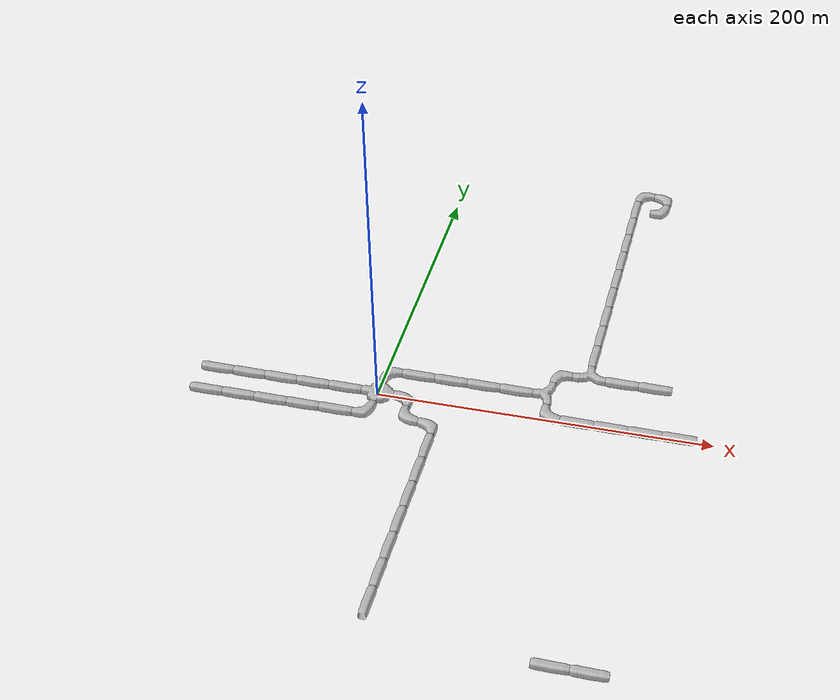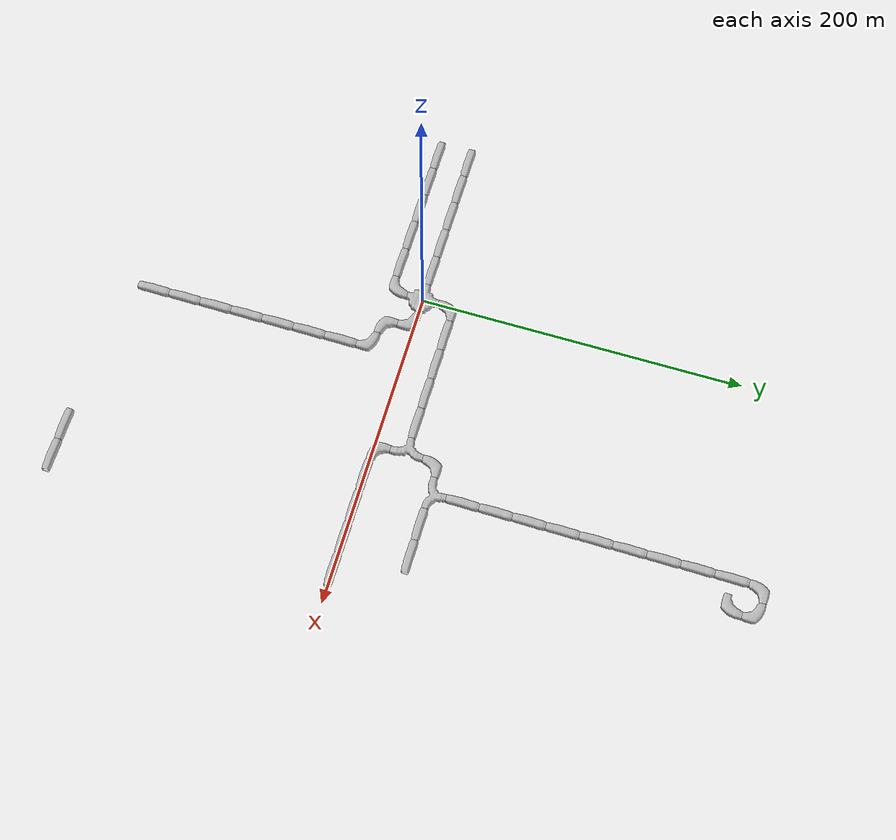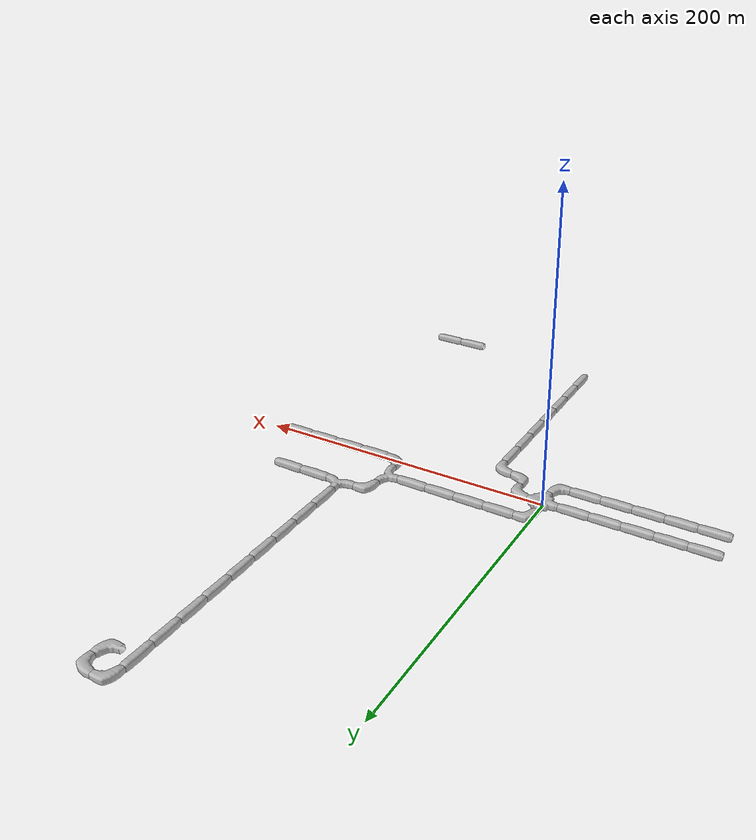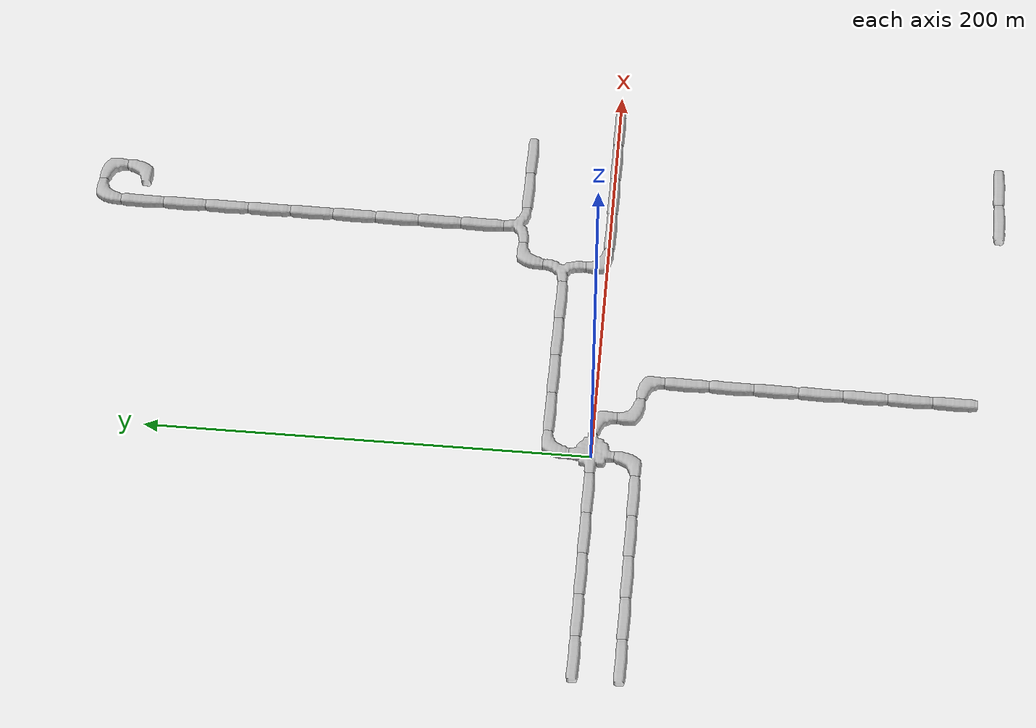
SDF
<sdf version="1.6">
 <world name="cave_8000_4">
  <include>
   <static>true</static>
   <name>cave_0_0</name>
   <pose>0 0 0 0 0 -1.5707963267948966</pose>
   <uri>model://cave_4way_20m</uri>
  </include>
  <include>
   <static>true</static>
   <name>cave_1_0</name>
   <pose>20 0 0 0 0 3.141592653589793</pose>
   <uri>model://cave_L_20m</uri>
  </include>
  <include>
   <static>true</static>
   <name>cave_1_-1</name>
   <pose>20 -20 0 0 0 0.0</pose>
   <uri>model://cave_L_20m</uri>
  </include>
  <include>
   <static>true</static>
   <name>cave_2_-1</name>
   <pose>40 -20 0 0 0 3.141592653589793</pose>
   <uri>model://cave_L_20m</uri>
  </include>
  <include>
   <static>true</static>
   <name>cave_2_-2</name>
   <pose>40 -40 0 0 0 0.0</pose>
   <uri>model://cave_straight_20m</uri>
  </include>
  <include>
   <static>true</static>
   <name>cave_2_-3</name>
   <pose>40 -60 0 0 0 0.0</pose>
   <uri>model://cave_straight_20m</uri>
  </include>
  <include>
   <static>true</static>
   <name>cave_2_-4</name>
   <pose>40 -80 0 0 0 0.0</pose>
   <uri>model://cave_straight_20m</uri>
  </include>
  <include>
   <static>true</static>
   <name>cave_2_-5</name>
   <pose>40 -100 0 0 0 0.0</pose>
   <uri>model://cave_straight_20m</uri>
  </include>
  <include>
   <static>true</static>
   <name>cave_2_-6</name>
   <pose>40 -120 0 0 0 0.0</pose>
   <uri>model://cave_straight_20m</uri>
  </include>
  <include>
   <static>true</static>
   <name>cave_2_-7</name>
   <pose>40 -140 0 0 0 0.0</pose>
   <uri>model://cave_straight_20m</uri>
  </include>
  <include>
   <static>true</static>
   <name>cave_2_-8</name>
   <pose>40 -160 0 0 0 0.0</pose>
   <uri>model://cave_straight_20m</uri>
  </include>
  <include>
   <static>true</static>
   <name>cave_0_-1</name>
   <pose>0 -20 0 0 0 1.5707963267948966</pose>
   <uri>model://cave_L_20m</uri>
  </include>
  <include>
   <static>true</static>
   <name>cave_-1_-1</name>
   <pose>-20 -20 0 0 0 1.5707963267948966</pose>
   <uri>model://cave_straight_20m</uri>
  </include>
  <include>
   <static>true</static>
   <name>cave_-2_-1</name>
   <pose>-40 -20 0 0 0 1.5707963267948966</pose>
   <uri>model://cave_straight_20m</uri>
  </include>
  <include>
   <static>true</static>
   <name>cave_-3_-1</name>
   <pose>-60 -20 0 0 0 1.5707963267948966</pose>
   <uri>model://cave_straight_20m</uri>
  </include>
  <include>
   <static>true</static>
   <name>cave_-4_-1</name>
   <pose>-80 -20 0 0 0 1.5707963267948966</pose>
   <uri>model://cave_straight_20m</uri>
  </include>
  <include>
   <static>true</static>
   <name>cave_-5_-1</name>
   <pose>-100 -20 0 0 0 1.5707963267948966</pose>
   <uri>model://cave_straight_20m</uri>
  </include>
  <include>
   <static>true</static>
   <name>cave_-1_0</name>
   <pose>-20 0 0 0 0 1.5707963267948966</pose>
   <uri>model://cave_straight_20m</uri>
  </include>
  <include>
   <static>true</static>
   <name>cave_-2_0</name>
   <pose>-40 0 0 0 0 1.5707963267948966</pose>
   <uri>model://cave_straight_20m</uri>
  </include>
  <include>
   <static>true</static>
   <name>cave_-3_0</name>
   <pose>-60 0 0 0 0 1.5707963267948966</pose>
   <uri>model://cave_straight_20m</uri>
  </include>
  <include>
   <static>true</static>
   <name>cave_-4_0</name>
   <pose>-80 0 0 0 0 1.5707963267948966</pose>
   <uri>model://cave_straight_20m</uri>
  </include>
  <include>
   <static>true</static>
   <name>cave_-5_0</name>
   <pose>-100 0 0 0 0 1.5707963267948966</pose>
   <uri>model://cave_straight_20m</uri>
  </include>
  <include>
   <static>true</static>
   <name>cave_0_1</name>
   <pose>0 20 0 0 0 -1.5707963267948966</pose>
   <uri>model://cave_L_20m</uri>
  </include>
  <include>
   <static>true</static>
   <name>cave_1_1</name>
   <pose>20 20 0 0 0 1.5707963267948966</pose>
   <uri>model://cave_straight_20m</uri>
  </include>
  <include>
   <static>true</static>
   <name>cave_2_1</name>
   <pose>40 20 0 0 0 1.5707963267948966</pose>
   <uri>model://cave_straight_20m</uri>
  </include>
  <include>
   <static>true</static>
   <name>cave_3_1</name>
   <pose>60 20 0 0 0 1.5707963267948966</pose>
   <uri>model://cave_straight_20m</uri>
  </include>
  <include>
   <static>true</static>
   <name>cave_4_1</name>
   <pose>80 20 0 0 0 1.5707963267948966</pose>
   <uri>model://cave_straight_20m</uri>
  </include>
  <include>
   <static>true</static>
   <name>cave_5_1</name>
   <pose>100 20 0 0 0 1.5707963267948966</pose>
   <uri>model://cave_3way_20m</uri>
  </include>
  <include>
   <static>true</static>
   <name>cave_5_0</name>
   <pose>100 0 0 0 0 0.0</pose>
   <uri>model://cave_L_20m</uri>
  </include>
  <include>
   <static>true</static>
   <name>cave_6_0</name>
   <pose>120 0 0 0 0 1.5707963267948966</pose>
   <uri>model://cave_straight_20m</uri>
  </include>
  <include>
   <static>true</static>
   <name>cave_7_0</name>
   <pose>140 0 0 0 0 1.5707963267948966</pose>
   <uri>model://cave_straight_20m</uri>
  </include>
  <include>
   <static>true</static>
   <name>cave_8_0</name>
   <pose>160 0 0 0 0 1.5707963267948966</pose>
   <uri>model://cave_straight_20m</uri>
  </include>
  <include>
   <static>true</static>
   <name>cave_9_0</name>
   <pose>180 0 0 0 0 1.5707963267948966</pose>
   <uri>model://cave_straight_20m</uri>
  </include>
  <include>
   <static>true</static>
   <name>cave_8_-9</name>
   <pose>160 -180 0 0 0 1.5707963267948966</pose>
   <uri>model://cave_straight_20m</uri>
  </include>
  <include>
   <static>true</static>
   <name>cave_7_-9</name>
   <pose>140 -180 0 0 0 1.5707963267948966</pose>
   <uri>model://cave_straight_20m</uri>
  </include>
  <include>
   <static>true</static>
   <name>cave_5_2</name>
   <pose>100 40 0 0 0 -1.5707963267948966</pose>
   <uri>model://cave_L_20m</uri>
  </include>
  <include>
   <static>true</static>
   <name>cave_6_2</name>
   <pose>120 40 0 0 0 0.0</pose>
   <uri>model://cave_3way_20m</uri>
  </include>
  <include>
   <static>true</static>
   <name>cave_7_2</name>
   <pose>140 40 0 0 0 1.5707963267948966</pose>
   <uri>model://cave_straight_20m</uri>
  </include>
  <include>
   <static>true</static>
   <name>cave_8_2</name>
   <pose>160 40 0 0 0 1.5707963267948966</pose>
   <uri>model://cave_straight_20m</uri>
  </include>
  <include>
   <static>true</static>
   <name>cave_6_3</name>
   <pose>120 60 0 0 0 0.0</pose>
   <uri>model://cave_straight_20m</uri>
  </include>
  <include>
   <static>true</static>
   <name>cave_6_4</name>
   <pose>120 80 0 0 0 0.0</pose>
   <uri>model://cave_straight_20m</uri>
  </include>
  <include>
   <static>true</static>
   <name>cave_6_5</name>
   <pose>120 100 0 0 0 0.0</pose>
   <uri>model://cave_straight_20m</uri>
  </include>
  <include>
   <static>true</static>
   <name>cave_6_6</name>
   <pose>120 120 0 0 0 0.0</pose>
   <uri>model://cave_straight_20m</uri>
  </include>
  <include>
   <static>true</static>
   <name>cave_6_7</name>
   <pose>120 140 0 0 0 0.0</pose>
   <uri>model://cave_straight_20m</uri>
  </include>
  <include>
   <static>true</static>
   <name>cave_6_8</name>
   <pose>120 160 0 0 0 0.0</pose>
   <uri>model://cave_straight_20m</uri>
  </include>
  <include>
   <static>true</static>
   <name>cave_6_9</name>
   <pose>120 180 0 0 0 0.0</pose>
   <uri>model://cave_straight_20m</uri>
  </include>
  <include>
   <static>true</static>
   <name>cave_6_10</name>
   <pose>120 200 0 0 0 0.0</pose>
   <uri>model://cave_straight_20m</uri>
  </include>
  <include>
   <static>true</static>
   <name>cave_6_11</name>
   <pose>120 220 0 0 0 0.0</pose>
   <uri>model://cave_straight_20m</uri>
  </include>
  <include>
   <static>true</static>
   <name>cave_6_12</name>
   <pose>120 240 0 0 0 -1.5707963267948966</pose>
   <uri>model://cave_L_20m</uri>
  </include>
  <include>
   <static>true</static>
   <name>cave_7_12</name>
   <pose>140 240 0 0 0 3.141592653589793</pose>
   <uri>model://cave_L_20m</uri>
  </include>
  <include>
   <static>true</static>
   <name>cave_7_11</name>
   <pose>140 220 0 0 0 1.5707963267948966</pose>
   <uri>model://cave_L_20m</uri>
  </include>
 </world>
</sdf>
